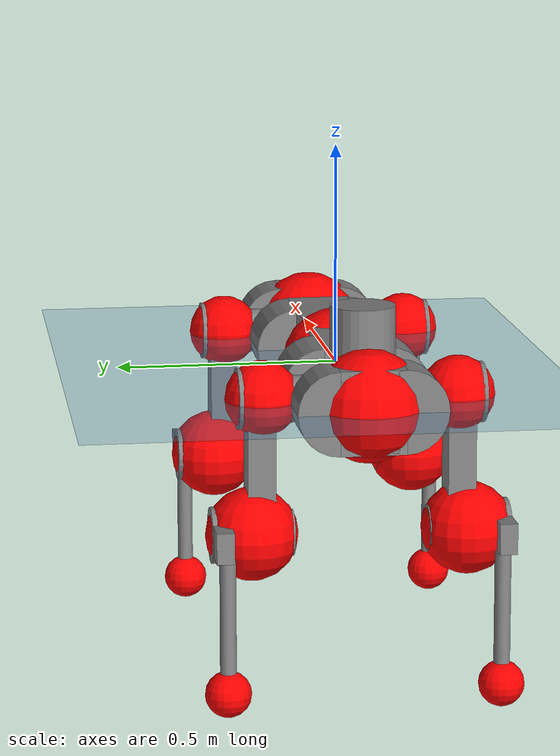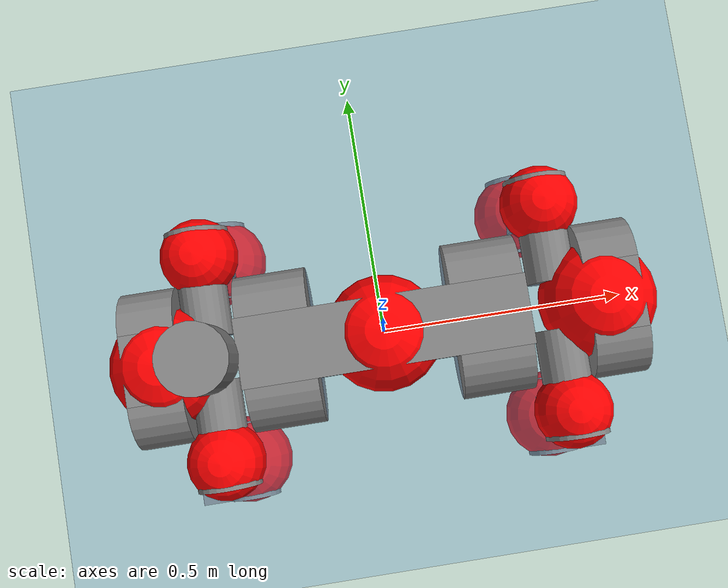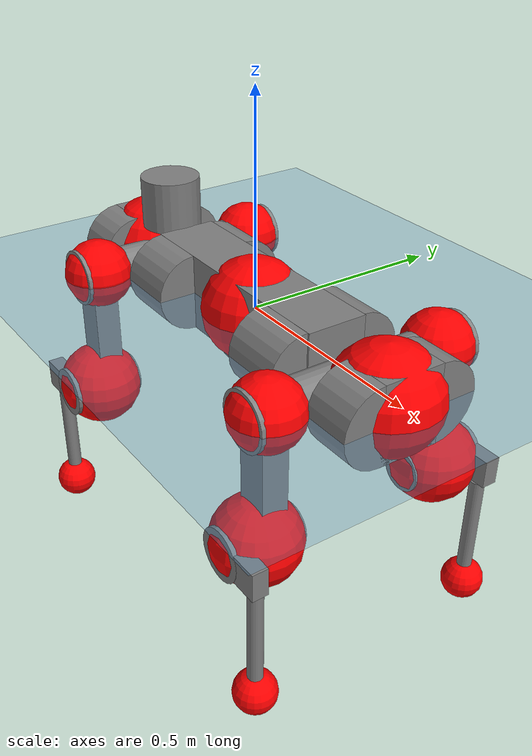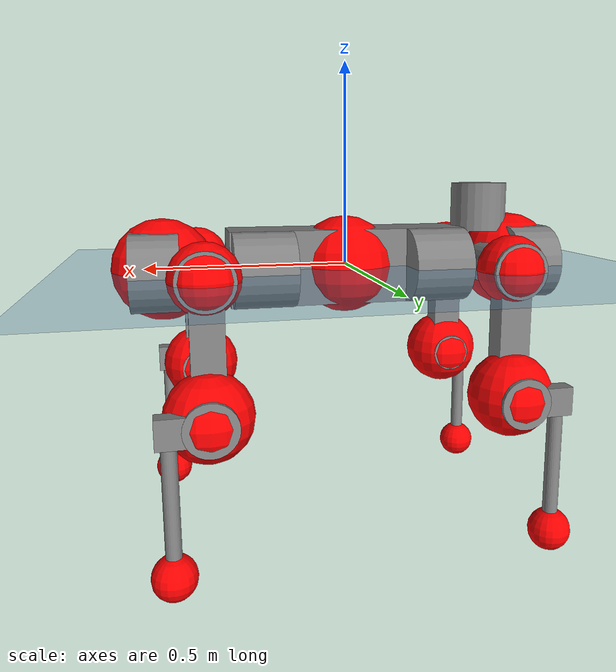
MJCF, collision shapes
<mujoco model="anymal_c">
  <compiler angle="radian" assetdir="assets" balanceinertia="true" inertiafromgeom="false"/>

  <option timestep="0.005" density="1.2" viscosity="2e-05"/>

  <size nkey="1"/>

  <visual>
    <quality shadowsize="8192"/>
    <map shadowclip="0.5"/>
  </visual>

  <default>
    <default class="/">
      <material specular="0" shininess="0.25"/>
      <geom contype="0" conaffinity="0" group="1" solref="-1000 -80"/>
      <site size="0.01 0.005 0.005" group="5"/>
      <general forcelimited="true" forcerange="-80 80" biastype="affine" gainprm="80" biasprm="0 -80 -2"/>
      <default class="anymal_c">
        <joint armature="0.01" damping="0.01" frictionloss="0.1"/>
        <default class="visual">
          <geom type="mesh" group="2"/>
          <default class="visual_zflip"/>
        </default>
        <default class="collision">
          <geom type="cylinder" group="3"/>
          <default class="foot">
            <geom size="0.03 0 0" type="sphere" condim="6" priority="1" friction="0.8 0.02 0.01" solimp="0.015 1 0.03"/>
          </default>
        </default>
      </default>
      <default class="reward_collision_sphere">
        <geom group="5" rgba="1 0 0 1"/>
      </default>
    </default>
  </default>

  <asset>
    <texture type="skybox" colorspace="auto" name="//unnamed_texture_0" builtin="gradient" rgb1="0.95 0.95 0.95" rgb2="0.95 0.95 0.95" width="100" height="600"/>
    <texture type="2d" colorspace="auto" name="texplane" builtin="checker" rgb1="0.345 0.575 0.748" rgb2="0.345 0.575 0.748" markrgb="1 1 1" width="512" height="512"/>
    <texture type="2d" colorspace="linear" name="base" file="base.png"/>
    <texture type="2d" colorspace="linear" name="top_shell" file="top_shell.png"/>
    <texture type="2d" colorspace="linear" name="bottom_shell" file="bottom_shell.png"/>
    <texture type="2d" colorspace="linear" name="remote" file="remote.png"/>
    <texture type="2d" colorspace="linear" name="hatch" file="hatch.png"/>
    <texture type="2d" colorspace="linear" name="handle" file="handle.png"/>
    <texture type="2d" colorspace="linear" name="face" file="face.png"/>
    <texture type="2d" colorspace="linear" name="battery" file="battery.png"/>
    <texture type="2d" colorspace="linear" name="lidar_cage" file="lidar_cage.png"/>
    <texture type="2d" colorspace="linear" name="depth_camera" file="depth_camera.png"/>
    <texture type="2d" colorspace="linear" name="wide_angle_camera" file="wide_angle_camera.png"/>
    <texture type="2d" colorspace="linear" name="lidar" file="lidar.png"/>
    <texture type="2d" colorspace="linear" name="drive" file="drive.png"/>
    <texture type="2d" colorspace="linear" name="hip_l" file="hip_l.png"/>
    <texture type="2d" colorspace="linear" name="shank_l" file="shank_l.png"/>
    <texture type="2d" colorspace="linear" name="foot" file="foot.png"/>
    <texture type="2d" colorspace="linear" name="thigh" file="thigh.png"/>
    <texture type="2d" colorspace="linear" name="shank_r" file="shank_r.png"/>
    <texture type="2d" colorspace="linear" name="hip_r" file="hip_r.png"/>
    <material name="MatPlane" class="/" texture="texplane" texuniform="true" texrepeat="2 2" specular="0.9" shininess="0.5"/>
    <material name="black_plastic" class="/" rgba="0.007 0.007 0.007 1"/>
    <material name="green" class="/" rgba="0.052 0.178 0.033 1"/>
    <material name="red" class="/" rgba="0.178 0.006 0.005 1"/>
    <material name="yellow" class="/" rgba="0.178 0.119 0.006 1"/>
    <material name="lwl" class="/" rgba="0.8 0.8 0.8 1"/>
    <material name="base" class="/" texture="base"/>
    <material name="top_shell" class="/" texture="top_shell"/>
    <material name="bottom_shell" class="/" texture="bottom_shell"/>
    <material name="hip_l" class="/" texture="hip_l"/>
    <material name="thigh" class="/" texture="thigh"/>
    <material name="shank_l" class="/" texture="shank_l"/>
    <material name="foot" class="/" texture="foot"/>
    <material name="hip_r" class="/" texture="hip_r"/>
    <material name="shank" class="/" texture="shank_r"/>
    <material name="hatch" class="/" texture="hatch"/>
    <material name="remote" class="/" texture="remote"/>
    <material name="handle" class="/" texture="handle"/>
    <material name="face" class="/" texture="face"/>
    <material name="depth_camera" class="/" texture="depth_camera"/>
    <material name="wide_angle_camera" class="/" texture="wide_angle_camera"/>
    <material name="battery" class="/" texture="battery"/>
    <material name="lidar_cage" class="/" texture="lidar_cage"/>
    <material name="lidar" class="/" texture="lidar"/>
    <material name="drive" class="/" texture="drive"/>
    <mesh name="base_0" class="/" file="base_0.obj"/>
    <mesh name="base_1" class="/" file="base_1.obj"/>
    <mesh name="base_2" class="/" file="base_2.obj"/>
    <mesh name="base_3" class="/" file="base_3.obj"/>
    <mesh name="base_4" class="/" file="base_4.obj"/>
    <mesh name="base_5" class="/" file="base_5.obj"/>
    <mesh name="top_shell" class="/" file="top_shell.obj"/>
    <mesh name="bottom_shell" class="/" file="bottom_shell.obj"/>
    <mesh name="remote" class="/" file="remote.obj"/>
    <mesh name="handle" class="/" file="handle.obj"/>
    <mesh name="face" class="/" file="face.obj"/>
    <mesh name="wide_angle_camera" class="/" file="wide_angle_camera.obj"/>
    <mesh name="depth_camera" class="/" file="depth_camera.obj"/>
    <mesh name="battery" class="/" file="battery.obj"/>
    <mesh name="lidar_cage" class="/" file="lidar_cage.obj"/>
    <mesh name="lidar" class="/" file="lidar.obj"/>
    <mesh name="drive" class="/" file="drive.obj"/>
    <mesh name="hip_l" class="/" file="hip_l.obj"/>
    <mesh name="thigh" class="/" file="thigh.obj"/>
    <mesh name="shank_l" class="/" file="shank_l.obj"/>
    <mesh name="foot" class="/" file="foot.obj"/>
    <mesh name="hip_r" class="/" file="hip_r.obj"/>
    <mesh name="hatch" class="/" file="hatch.obj"/>
    <mesh name="shank_r" class="/" file="shank_r.obj"/>
  </asset>

  <worldbody>
    <geom name="floor" class="/" size="100 100 0.125" type="plane" group="0" material="MatPlane"/>
    <light name="toplight_shadow" class="/" pos="0 0 5" dir="0.0990148 0.0990148 -0.990148" type="directional" ambient="0.04 0.04 0.04" diffuse="0.55 0.55 0.55" specular="0.12 0.12 0.12"/>
    <light name="toplight_fill" class="/" pos="0 0 5" dir="0.0990148 0.0990148 -0.990148" type="directional" castshadow="false" ambient="0.04 0.04 0.04" diffuse="0.3 0.3 0.3" specular="0.08 0.08 0.08"/>
    <body name="trunk" childclass="anymal_c" pos="0.000329193 -0.00253485 -0.000177173" quat="1 9.94265e-06 -8.58931e-06 2.64389e-06">
      <inertial pos="0.00150839 -0.00275877 0.0540006" quat="0.502977 0.50684 0.490632 0.499408" mass="19.9318" diaginertia="0.638105 0.65436 0.290408"/>
      <joint name="//unnamed_joint_0" type="free" armature="0" damping="0" frictionloss="0"/>
      <geom name="//unnamed_geom_1" class="visual" material="green" mesh="base_0"/>
      <geom name="//unnamed_geom_2" class="visual" material="yellow" mesh="base_1"/>
      <geom name="//unnamed_geom_3" class="visual" material="red" mesh="base_2"/>
      <geom name="//unnamed_geom_4" class="visual" material="black_plastic" mesh="base_3"/>
      <geom name="//unnamed_geom_5" class="visual" material="lwl" mesh="base_4"/>
      <geom name="//unnamed_geom_6" class="visual" material="base" mesh="base_5"/>
      <geom name="trunk_1" class="collision" size="0.298259 0.0719937 0.0925633" type="box"/>
      <geom name="trunk_2" class="collision" size="0.0925633 0.0745649" pos="0.218894 0.070978 0" quat="0.707107 0 0.707107 0"/>
      <geom name="trunk_3" class="collision" size="0.0925633 0.0745649" pos="-0.218894 0.070978 0" quat="0.707107 0 0.707107 0"/>
      <geom name="trunk_4" class="collision" size="0.0925633 0.0745649" pos="0.218894 -0.070978 0" quat="0.707107 0 0.707107 0"/>
      <geom name="trunk_5" class="collision" size="0.0925633 0.0745649" pos="-0.218894 -0.070978 0" quat="0.707107 0 0.707107 0"/>
      <geom name="//unnamed_geom_12" class="visual" material="top_shell" mesh="top_shell"/>
      <geom name="//unnamed_geom_13" class="visual" material="bottom_shell" mesh="bottom_shell"/>
      <geom name="//unnamed_geom_14" class="visual" material="remote" mesh="remote"/>
      <geom name="//unnamed_geom_15" class="visual" material="handle" mesh="handle"/>
      <geom name="//unnamed_geom_16" class="visual" pos="0.417157 0 0" quat="1 0 0 0" material="face" mesh="face"/>
      <geom name="trunk_6" class="collision" size="0.0565665 0.0719937 0.0925633" pos="0.472509 0 0" type="box"/>
      <geom name="//unnamed_geom_18" class="collision" size="0.0925633 0.0565665" pos="0.472509 0.070978 0" quat="0.707107 0 0.707107 0"/>
      <geom name="//unnamed_geom_19" class="collision" size="0.0925633 0.0565665" pos="0.472509 -0.070978 0" quat="0.707107 0 0.707107 0"/>
      <geom name="//unnamed_geom_20" class="visual" pos="0.464612 0 -0.0315456" quat="0.965926 0 0.258819 0" material="depth_camera" mesh="depth_camera"/>
      <geom name="//unnamed_geom_21" class="visual" pos="0.516288 0 0.015944" material="wide_angle_camera" mesh="wide_angle_camera"/>
      <geom name="//unnamed_geom_22" class="visual_zflip" pos="-0.417157 0 0" quat="0 0 0 1" material="face" mesh="face"/>
      <geom name="trunk_7" class="collision" size="0.0565665 0.0719937 0.0925633" pos="-0.472509 0 0" quat="0 0 0 1" type="box"/>
      <geom name="//unnamed_geom_24" class="collision" size="0.0925633 0.0565665" pos="-0.472509 -0.070978 0" quat="0 -0.707107 0 0.707107"/>
      <geom name="//unnamed_geom_25" class="collision" size="0.0925633 0.0565665" pos="-0.472509 0.070978 0" quat="0 -0.707107 0 0.707107"/>
      <geom name="//unnamed_geom_26" class="visual" pos="-0.464612 0 -0.0315456" quat="0 -0.258819 0 0.965926" material="depth_camera" mesh="depth_camera"/>
      <geom name="//unnamed_geom_27" class="visual_zflip" pos="-0.516288 0 0.015944" quat="0 0 0 1" material="wide_angle_camera" mesh="wide_angle_camera"/>
      <geom name="//unnamed_geom_28" class="visual" material="battery" mesh="battery"/>
      <geom name="//unnamed_geom_29" class="visual" pos="0 0.0776299 0.0304943" quat="0.683013 -0.183013 0.183013 0.683013" material="depth_camera" mesh="depth_camera"/>
      <geom name="//unnamed_geom_30" class="visual" pos="0 -0.0776299 0.0304943" quat="0.683013 0.183013 0.183013 -0.683013" material="depth_camera" mesh="depth_camera"/>
      <geom name="//unnamed_geom_31" class="visual" pos="-0.366333 0 0.0782821" quat="1 0 0 0" material="lidar_cage" mesh="lidar_cage"/>
      <geom name="trunk_8" class="collision" size="0.0719937 0.0617089" pos="-0.366333 0 0.142186"/>
      <geom name="//unnamed_geom_33" class="visual" pos="-0.366333 2.97059e-06 0.151452" quat="0.707107 0 0 -0.707107" material="lidar" mesh="lidar"/>
      <geom name="//unnamed_geom_34" class="visual" pos="0.301822 0.105471 -8.81327e-10" quat="0.258819 0.965926 0 0" material="drive" mesh="drive"/>
      <geom name="//unnamed_geom_35" class="visual" pos="0.301822 -0.105471 8.81327e-10" quat="0.258819 -0.965926 0 0" material="drive" mesh="drive"/>
      <geom name="//unnamed_geom_36" class="visual" pos="-0.301822 0.105471 8.81327e-10" quat="0 0 0.965926 -0.258819" material="drive" mesh="drive"/>
      <geom name="//unnamed_geom_37" class="visual" pos="-0.301822 -0.105471 -8.81327e-10" quat="0 0 -0.965926 -0.258819" material="drive" mesh="drive"/>
      <geom name="//unnamed_geom_38" class="visual" pos="0.116744 0 0.0777495" quat="1 0 0 0" material="hatch" mesh="hatch"/>
      <geom name="//unnamed_geom_39" class="reward_collision_sphere" size="0.123418"/>
      <geom name="//unnamed_geom_40" class="reward_collision_sphere" size="0.123418" pos="0.452884 0 0"/>
      <geom name="//unnamed_geom_41" class="reward_collision_sphere" size="0.123418" pos="-0.452884 0 0"/>
      <site name="imu" pos="0.262631 0.0156015 0.0366362" size="0.0102848"/>
      <camera name="track" pos="0 -2.02794 0" quat="0.707107 0.707107 0 0" mode="trackcom"/>
      <camera name="ego_camera" pos="0.452884 0 -0.0426025" quat="-0.5 -0.5 0.5 0.5"/>
      <body name="LF_HIP" pos="0.304329 0.108321 0.0028844" quat="0.258543 0.965999 8.7582e-05 -0.00120187">
        <inertial pos="0.0579018 -0.0151939 -0.00793196" quat="-0.127738 0.711137 -0.134292 0.678184" mass="2.91018" diaginertia="0.00603758 0.00503966 0.00451716"/>
        <joint name="LF_HAA" pos="0 0 0" axis="0.999995 0.00198587 0.00225419" stiffness="0.00136903" range="-0.671872 0.50799" armature="0.00999188" damping="0" frictionloss="0.113399"/>
        <geom name="//unnamed_geom_42" class="visual" pos="0 -5.18445e-05 8.51541e-06" quat="0.258819 -0.965926 0 0" material="hip_l" mesh="hip_l"/>
        <geom name="//unnamed_geom_43" class="visual" pos="0.0602839 -0.0731645 -0.0426195" quat="0.183013 -0.683013 0.683013 0.183013" material="drive" mesh="drive"/>
        <geom name="//unnamed_geom_44" class="collision" size="0.0514241 0.0719937" pos="0.0602839 -0.0121269 -0.00735425" quat="-0.353553 -0.612372 0.612372 -0.353553"/>
        <body name="LF_THIGH" pos="0.0603273 -0.0714546 -0.0441186" quat="0.183642 -0.682692 0.683403 0.182122">
          <inertial pos="0.0335005 0.0017035 -0.262503" quat="0.991689 -0.0100726 -0.0925281 0.0888296" mass="3.33923" diaginertia="0.0312937 0.0323135 0.00581515"/>
          <joint name="LF_HFE" pos="0 0 0" axis="0.999922 0.00407387 0.0117866" range="-3.13261 3.19397" armature="0.0116554" damping="0.00171458" frictionloss="0.102434"/>
          <geom name="//unnamed_geom_45" class="visual" pos="-0.000150438 -2.37055e-07 0" quat="0.707107 0 0 -0.707107" material="thigh" mesh="thigh"/>
          <geom name="//unnamed_geom_46" class="collision" size="0.0668513 0.0411392" pos="0.0402564 0 0" quat="0.5 0.5 -0.5 -0.5"/>
          <geom name="//unnamed_geom_47" class="collision" size="0.038568 0.0308544 0.145339" pos="0.0301923 0 -0.150508" quat="0.707107 0 0 -0.707107" type="box"/>
          <geom name="//unnamed_geom_48" class="visual" pos="0.100943 0 -0.303543" quat="1 0 0 0" material="drive" mesh="drive"/>
          <geom name="//unnamed_geom_49" class="collision" size="0.0514241 0.0719937" pos="0.0304942 0 -0.303543" quat="0.707107 0 0.707107 0"/>
          <geom name="//unnamed_geom_50" class="reward_collision_sphere" size="0.0822785" pos="0.0251602 0 0"/>
          <body name="LF_SHANK" pos="0.101696 -0.00289201 -0.304379" quat="1 -0.000692685 7.669e-06 3.83181e-05">
            <inertial pos="0.00746887 -0.0620532 -0.0885105" quat="0.993077 -0.114971 -0.000964436 -0.0240593" mass="0.642923" diaginertia="0.0101297 0.0101968 0.00147745"/>
            <joint name="LF_KFE" pos="0 0 0" axis="1 -7.85152e-05 4.10938e-05" range="-3.19255 3.13844" armature="0.009356" damping="0.00797526" frictionloss="0.1026"/>
            <geom name="//unnamed_geom_51" class="visual" pos="-4.90545e-05 -0.000261561 0" quat="0.707107 0 0 -0.707107" material="shank_l" mesh="shank_l"/>
            <geom name="LF_kfe_act" class="collision" size="0.0617089 0.0205696" pos="0.0201282 0 0" quat="0.5 0.5 -0.5 -0.5"/>
            <geom name="//unnamed_geom_53" class="collision" size="0.0591366 0.0347112 0.0195411" pos="0.0201282 -0.0583023 0" quat="0.5 0.5 -0.5 -0.5" type="box"/>
            <geom name="//unnamed_geom_54" class="visual" pos="0.0131337 -0.089263 -0.359959" quat="0.382683 0 0 -0.92388" material="foot" mesh="foot"/>
            <geom name="LF_calf" class="collision" size="0.0179984 0.145275" pos="0.0131336 -0.0891788 -0.17998" quat="0.707107 0 0 -0.707107"/>
            <geom name="LF_foot" class="foot" size="0.0303159" pos="0.0131336 -0.0891788 -0.335995" quat="0.707107 0 0 -0.707107"/>
            <geom name="//unnamed_geom_57" class="reward_collision_sphere" size="0.102848" pos="-0.0503205 0 0"/>
            <geom name="//unnamed_geom_58" class="reward_collision_sphere" size="0.0514241" pos="0.0131336 -0.0891788 -0.335995"/>
            <site name="LF_foot" class="foot" pos="0.0131336 -0.0891788 -0.335995" quat="0.707107 0 0 -0.707107" size="0.0102848"/>
          </body>
        </body>
      </body>
      <body name="RF_HIP" pos="0.302818 -0.107243 0.000214361" quat="0.258996 -0.965878 -3.92957e-05 -0.000286054">
        <inertial pos="0.0574416 0.0147674 -0.00997129" quat="0.135553 0.680015 0.1271 0.70926" mass="2.91891" diaginertia="0.00609346 0.0051144 0.00465394"/>
        <joint name="RF_HAA" pos="0 0 0" axis="0.999927 -0.0120747 0.000446443" range="-0.487573 0.714034" armature="0.00991649" damping="0.00658395" frictionloss="0.101277"/>
        <geom name="//unnamed_geom_59" class="visual" pos="0 5.18441e-05 8.51539e-06" quat="0.258819 0.965926 0 0" material="hip_r" mesh="hip_r"/>
        <geom name="//unnamed_geom_60" class="visual" pos="0.060284 0.0731645 -0.0426195" quat="0.183013 0.683013 0.683013 -0.183013" material="drive" mesh="drive"/>
        <geom name="//unnamed_geom_61" class="collision" size="0.0514241 0.0719937" pos="0.0602839 0.0121269 -0.00735425" quat="-0.353553 0.612372 0.612372 0.353553"/>
        <body name="RF_THIGH" pos="0.0632272 0.0757236 -0.0436166" quat="0.182733 0.682673 0.683336 -0.18335">
          <inertial pos="0.030263 -0.00252101 -0.261818" quat="0.99242 -0.00319931 -0.0880953 0.0856269" mass="3.55007" diaginertia="0.0322726 0.0330489 0.00592701"/>
          <joint name="RF_HFE" pos="0 0 0" axis="0.999995 0.00297889 -0.000843414" range="-3.19731 3.14078" armature="0.0100577" damping="0.00537337" frictionloss="0.102353"/>
          <geom name="//unnamed_geom_62" class="visual" pos="-0.000150438 -2.37055e-07 0" quat="0.707107 0 0 -0.707107" material="thigh" mesh="thigh"/>
          <geom name="//unnamed_geom_63" class="collision" size="0.0668513 0.0411392" pos="0.0402564 0 0" quat="0.5 0.5 0.5 0.5"/>
          <geom name="//unnamed_geom_64" class="collision" size="0.038568 0.0308544 0.145339" pos="0.0301923 0 -0.150508" quat="0.707107 0 0 0.707107" type="box"/>
          <geom name="//unnamed_geom_65" class="visual" pos="0.100943 0 -0.303543" quat="1 0 0 0" material="drive" mesh="drive"/>
          <geom name="//unnamed_geom_66" class="collision" size="0.0514241 0.0719937" pos="0.0304942 0 -0.303543" quat="0.707107 0 0.707107 0"/>
          <geom name="//unnamed_geom_67" class="reward_collision_sphere" size="0.0822785" pos="0.0251602 0 0"/>
          <body name="RF_SHANK" pos="0.0982032 -0.00137485 -0.305088" quat="0.999999 -0.00119433 -0.000409535 0.000644676">
            <inertial pos="0.00577716 0.0618213 -0.0835149" quat="0.992284 0.121885 -0.00621327 0.0218479" mass="0.639058" diaginertia="0.0103544 0.00987841 0.00152313"/>
            <joint name="RF_KFE" pos="0 0 0" axis="0.999903 0.0136885 -0.00265169" range="-3.15821 3.13243" armature="0.0116189" damping="0.0239616" frictionloss="0.0887927"/>
            <geom name="//unnamed_geom_68" class="visual" pos="-4.90542e-05 0.000261561 0" quat="0.707107 0 0 0.707107" material="shank" mesh="shank_r"/>
            <geom name="RF_kfe_act" class="collision" size="0.0617089 0.0205696" pos="0.0201282 0 0" quat="0.5 0.5 0.5 0.5"/>
            <geom name="//unnamed_geom_70" class="collision" size="0.0591366 0.0347112 0.0195411" pos="0.0201282 0.0583023 0" quat="0.5 0.5 0.5 0.5" type="box"/>
            <geom name="//unnamed_geom_71" class="visual" pos="0.0131336 0.089263 -0.359959" quat="0.382683 0 0 0.92388" material="foot" mesh="foot"/>
            <geom name="RF_calf" class="collision" size="0.0179984 0.145275" pos="0.0131336 0.0891788 -0.17998" quat="0.707107 0 0 0.707107"/>
            <geom name="RF_foot" class="foot" size="0.0270356" pos="0.0131336 0.0891788 -0.335995" quat="0.707107 0 0 0.707107"/>
            <geom name="//unnamed_geom_74" class="reward_collision_sphere" size="0.102848" pos="-0.0503205 0 0"/>
            <geom name="//unnamed_geom_75" class="reward_collision_sphere" size="0.0514241" pos="0.0131336 0.0891788 -0.335995"/>
            <site name="RF_foot" class="foot" pos="0.0131336 0.0891788 -0.335995" quat="0.707107 0 0 0.707107" size="0.0102848"/>
          </body>
        </body>
      </body>
      <body name="LH_HIP" pos="-0.302624 0.105009 -0.000288579" quat="-4.50801e-05 3.17898e-06 0.965923 -0.258831">
        <inertial pos="0.0571309 0.012629 -0.00766812" quat="0.132602 0.678185 0.126187 0.711729" mass="3.00731" diaginertia="0.00605372 0.00529805 0.00453824"/>
        <joint name="LH_HAA" pos="0 0 0" axis="0.999981 -0.000154988 0.00610476" range="-0.514648 0.720221" armature="0.0104306" damping="0.011144" frictionloss="0.097387"/>
        <geom name="//unnamed_geom_76" class="visual" pos="0 5.18441e-05 8.51539e-06" quat="-0.258819 -0.965926 0 0" material="hip_r" mesh="hip_r"/>
        <geom name="//unnamed_geom_77" class="visual" pos="0.060284 0.0731645 -0.0426195" quat="0.183013 0.683013 0.683013 -0.183013" material="drive" mesh="drive"/>
        <geom name="//unnamed_geom_78" class="collision" size="0.0514241 0.0719937" pos="0.0602839 0.0121269 -0.00735425" quat="-0.353553 0.612372 0.612372 0.353553"/>
        <body name="LH_THIGH" pos="0.0575167 0.0744154 -0.0464409" quat="0.182823 0.683021 0.682974 -0.183317">
          <inertial pos="0.0308594 0.000543983 -0.26419" quat="0.992974 -0.00241759 -0.0844809 0.0828184" mass="3.43573" diaginertia="0.0315295 0.0321 0.00573794"/>
          <joint name="LH_HFE" pos="0 0 0" axis="0.999995 0.00123019 -0.00301342" range="-3.19405 3.17455" armature="0.0102783" damping="0" frictionloss="0.104236"/>
          <geom name="//unnamed_geom_79" class="visual" pos="-0.000150438 -2.37055e-07 0" quat="0.707107 0 0 -0.707107" material="thigh" mesh="thigh"/>
          <geom name="//unnamed_geom_80" class="collision" size="0.0668513 0.0411392" pos="0.0402564 0 0" quat="0.5 0.5 -0.5 -0.5"/>
          <geom name="//unnamed_geom_81" class="collision" size="0.038568 0.0308544 0.145339" pos="0.0301923 0 -0.150508" quat="0.707107 0 0 -0.707107" type="box"/>
          <geom name="//unnamed_geom_82" class="visual" pos="0.100943 0 -0.303543" quat="1 0 0 0" material="drive" mesh="drive"/>
          <geom name="//unnamed_geom_83" class="collision" size="0.0514241 0.0719937" pos="0.0304942 0 -0.303543" quat="0.707107 0 0.707107 0"/>
          <geom name="//unnamed_geom_84" class="reward_collision_sphere" size="0.0822785" pos="0.0251602 0 0"/>
          <body name="LH_SHANK" pos="0.0991326 -0.00227459 -0.30424" quat="1 -0.000331018 0.000108623 0.000127063">
            <inertial pos="0.00568311 0.0619725 -0.0848078" quat="0.992985 0.115409 0.00085896 0.025712" mass="0.667338" diaginertia="0.0110772 0.0100607 0.00156889"/>
            <joint name="LH_KFE" pos="0 0 0" axis="0.99987 0.00400116 -0.015643" range="-3.09293 3.09065" armature="0.0106242" damping="0.00369862" frictionloss="0.101014"/>
            <geom name="//unnamed_geom_85" class="visual" pos="-4.90542e-05 0.000261561 0" quat="-0.707107 0 0 -0.707107" material="shank" mesh="shank_r"/>
            <geom name="LH_kfe_act" class="collision" size="0.0617089 0.0205696" pos="0.0201282 0 0" quat="0.5 0.5 -0.5 -0.5"/>
            <geom name="//unnamed_geom_87" class="collision" size="0.0591366 0.0347112 0.0195411" pos="0.0201282 0.0583023 0" quat="0.5 0.5 -0.5 -0.5" type="box"/>
            <geom name="//unnamed_geom_88" class="visual" pos="0.0131336 0.089263 -0.359959" quat="-0.382683 0 0 -0.92388" material="foot" mesh="foot"/>
            <geom name="LH_calf" class="collision" size="0.0179984 0.145275" pos="0.0131336 0.0891788 -0.17998" quat="0.707107 0 0 -0.707107"/>
            <geom name="LH_foot" class="foot" size="0.0323017" pos="0.0131336 0.0891788 -0.335995" quat="0.707107 0 0 -0.707107"/>
            <geom name="//unnamed_geom_91" class="reward_collision_sphere" size="0.102848" pos="-0.0503205 0 0"/>
            <geom name="//unnamed_geom_92" class="reward_collision_sphere" size="0.0514241" pos="0.0131336 0.0891788 -0.335995"/>
            <site name="LH_foot" class="foot" pos="0.0131336 0.0891788 -0.335995" quat="0.707107 0 0 -0.707107" size="0.0102848"/>
          </body>
        </body>
      </body>
      <body name="RH_HIP" pos="-0.302711 -0.103018 -5.40719e-05" quat="0.000499329 3.37629e-05 -0.96622 -0.257718">
        <inertial pos="0.0561434 -0.0128887 -0.0110733" quat="-0.127141 0.708421 -0.131261 0.681722" mass="3.09892" diaginertia="0.00634642 0.00536097 0.00474934"/>
        <joint name="RH_HAA" pos="0 0 0" axis="0.999919 0.00192436 -0.0125938" range="-0.707215 0.437365" armature="0.0101826" damping="0.0149876" frictionloss="0.10069"/>
        <geom name="//unnamed_geom_93" class="visual" pos="0 -5.18445e-05 8.51541e-06" quat="-0.258819 0.965926 0 0" material="hip_l" mesh="hip_l"/>
        <geom name="//unnamed_geom_94" class="visual" pos="0.0602839 -0.0731645 -0.0426195" quat="-0.183013 0.683013 -0.683013 -0.183013" material="drive" mesh="drive"/>
        <geom name="//unnamed_geom_95" class="collision" size="0.0514241 0.0719937" pos="0.0602839 -0.0121269 -0.00735425" quat="0.353553 0.612372 -0.612372 0.353553"/>
        <body name="RH_THIGH" pos="0.0607223 -0.0712176 -0.0436658" quat="-0.184313 0.682426 -0.68329 -0.182861">
          <inertial pos="0.0312872 -0.00276505 -0.25977" quat="0.993412 -0.000574872 -0.0779771 0.0839788" mass="3.29166" diaginertia="0.0305548 0.0316062 0.00561116"/>
          <joint name="RH_HFE" pos="0 0 0" axis="0.999914 0.00980265 -0.00865604" range="-3.16206 3.17578" armature="0.0100615" damping="0.0121911" frictionloss="0.0975317"/>
          <geom name="//unnamed_geom_96" class="visual" pos="-0.000150438 -2.37055e-07 0" quat="0.707107 0 0 -0.707107" material="thigh" mesh="thigh"/>
          <geom name="//unnamed_geom_97" class="collision" size="0.0668513 0.0411392" pos="0.0402564 0 0" quat="0.5 0.5 0.5 0.5"/>
          <geom name="//unnamed_geom_98" class="collision" size="0.038568 0.0308544 0.145339" pos="0.0301923 0 -0.150508" quat="0.707107 0 0 0.707107" type="box"/>
          <geom name="//unnamed_geom_99" class="visual" pos="0.100943 0 -0.303543" quat="1 0 0 0" material="drive" mesh="drive"/>
          <geom name="//unnamed_geom_100" class="collision" size="0.0514241 0.0719937" pos="0.0304942 0 -0.303543" quat="0.707107 0 0.707107 0"/>
          <geom name="//unnamed_geom_101" class="reward_collision_sphere" size="0.0822785" pos="0.0251602 0 0"/>
          <body name="RH_SHANK" pos="0.0984995 -0.00119919 -0.305064" quat="1 6.57043e-05 0.000253594 2.33264e-05">
            <inertial pos="0.00793471 -0.062082 -0.0852226" quat="0.992929 -0.115952 -0.00115551 -0.0254023" mass="0.639676" diaginertia="0.0108781 0.0100122 0.00151654"/>
            <joint name="RH_KFE" pos="0 0 0" axis="0.999954 0.00219152 0.00932625" range="-3.17959 3.19021" armature="0.00885108" damping="0.0103112" frictionloss="0.103384"/>
            <geom name="//unnamed_geom_102" class="visual" pos="-4.90545e-05 -0.000261561 0" quat="0.707107 0 0 -0.707107" material="shank_l" mesh="shank_l"/>
            <geom name="RH_kfe_act" class="collision" size="0.0617089 0.0205696" pos="0.0201282 0 0" quat="0.5 0.5 0.5 0.5"/>
            <geom name="//unnamed_geom_104" class="collision" size="0.0591366 0.0347112 0.0195411" pos="0.0201282 -0.0583023 0" quat="0.5 0.5 0.5 0.5" type="box"/>
            <geom name="//unnamed_geom_105" class="visual" pos="0.0131337 -0.089263 -0.359959" quat="0.382683 0 0 -0.92388" material="foot" mesh="foot"/>
            <geom name="RH_calf" class="collision" size="0.0179984 0.145275" pos="0.0131336 -0.0891788 -0.17998" quat="0.707107 0 0 0.707107"/>
            <geom name="RH_foot" class="foot" size="0.0289772" pos="0.0131336 -0.0891788 -0.335995" quat="0.707107 0 0 0.707107"/>
            <geom name="//unnamed_geom_108" class="reward_collision_sphere" size="0.102848" pos="-0.0503205 0 0"/>
            <geom name="//unnamed_geom_109" class="reward_collision_sphere" size="0.0514241" pos="0.0131336 -0.0891788 -0.335995"/>
            <site name="RH_foot" class="foot" pos="0.0131336 -0.0891788 -0.335995" quat="0.707107 0 0 0.707107" size="0.0102848"/>
          </body>
        </body>
      </body>
    </body>
  </worldbody>

  <contact>
    <pair class="/" geom1="floor" geom2="LF_foot" name="//unnamed_contact_0"/>
    <pair class="/" geom1="floor" geom2="RF_foot" name="//unnamed_contact_1"/>
    <pair class="/" geom1="floor" geom2="LH_foot" name="//unnamed_contact_2"/>
    <pair class="/" geom1="floor" geom2="RH_foot" name="//unnamed_contact_3"/>
  </contact>

  <actuator>
    <general name="LF_HAA" class="/" joint="LF_HAA" forcerange="-89.8128 89.8128" gainprm="87.9042" biasprm="0 -87.9042 -2.11276"/>
    <general name="LF_HFE" class="/" joint="LF_HFE" forcerange="-76.6938 76.6938" gainprm="87.9042" biasprm="0 -87.9042 -2.11276"/>
    <general name="LF_KFE" class="/" joint="LF_KFE" forcerange="-86.1116 86.1116" gainprm="87.9042" biasprm="0 -87.9042 -2.11276"/>
    <general name="RF_HAA" class="/" joint="RF_HAA" forcerange="-91.22 91.22" gainprm="87.9042" biasprm="0 -87.9042 -2.11276"/>
    <general name="RF_HFE" class="/" joint="RF_HFE" forcerange="-92.0706 92.0706" gainprm="87.9042" biasprm="0 -87.9042 -2.11276"/>
    <general name="RF_KFE" class="/" joint="RF_KFE" forcerange="-89.3563 89.3563" gainprm="87.9042" biasprm="0 -87.9042 -2.11276"/>
    <general name="LH_HAA" class="/" joint="LH_HAA" forcerange="-85.5614 85.5614" gainprm="87.9042" biasprm="0 -87.9042 -2.11276"/>
    <general name="LH_HFE" class="/" joint="LH_HFE" forcerange="-79.1185 79.1185" gainprm="87.9042" biasprm="0 -87.9042 -2.11276"/>
    <general name="LH_KFE" class="/" joint="LH_KFE" forcerange="-80.3657 80.3657" gainprm="87.9042" biasprm="0 -87.9042 -2.11276"/>
    <general name="RH_HAA" class="/" joint="RH_HAA" forcerange="-74.3787 74.3787" gainprm="87.9042" biasprm="0 -87.9042 -2.11276"/>
    <general name="RH_HFE" class="/" joint="RH_HFE" forcerange="-84.5094 84.5094" gainprm="87.9042" biasprm="0 -87.9042 -2.11276"/>
    <general name="RH_KFE" class="/" joint="RH_KFE" forcerange="-82.5128 82.5128" gainprm="87.9042" biasprm="0 -87.9042 -2.11276"/>
  </actuator>

  <sensor>
    <gyro site="imu" name="imu_angular_velocity"/>
    <velocimeter site="imu" name="imu_linear_velocity"/>
    <framelinvel objtype="site" objname="LF_foot" name="LF_foot_global_linear_velocity"/>
    <framelinvel objtype="site" objname="RF_foot" name="RF_foot_global_linear_velocity"/>
    <framelinvel objtype="site" objname="LH_foot" name="LH_foot_global_linear_velocity"/>
    <framelinvel objtype="site" objname="RH_foot" name="RH_foot_global_linear_velocity"/>
  </sensor>

  <keyframe>
    <key name="home" qpos="0 0 0.55 1 0 0 0 0 0.4 -0.8 0 -0.4 0.8 0 -0.4 0.8 0 0.4 -0.8"/>
  </keyframe>
</mujoco>
